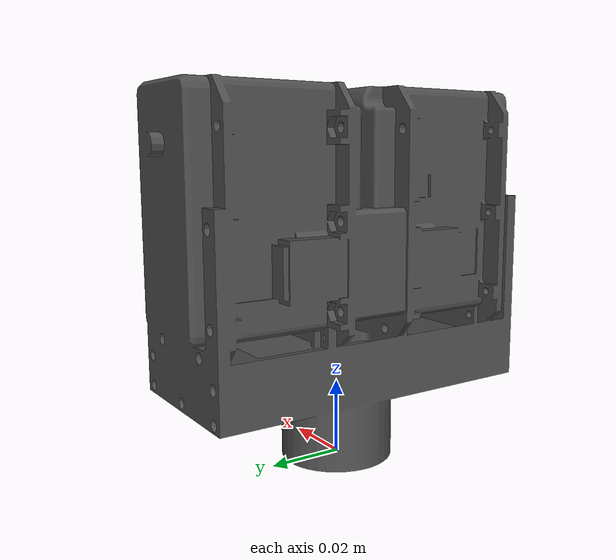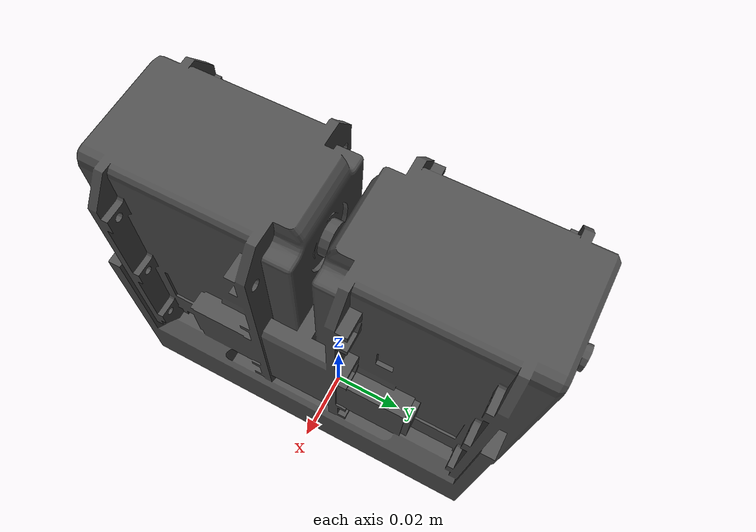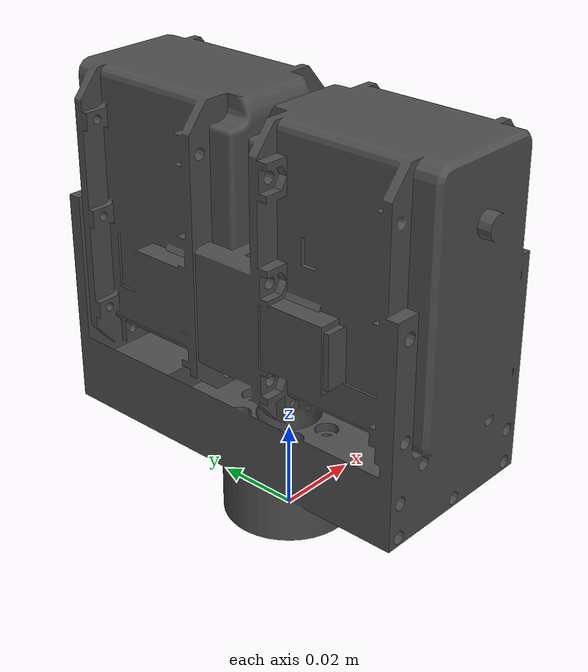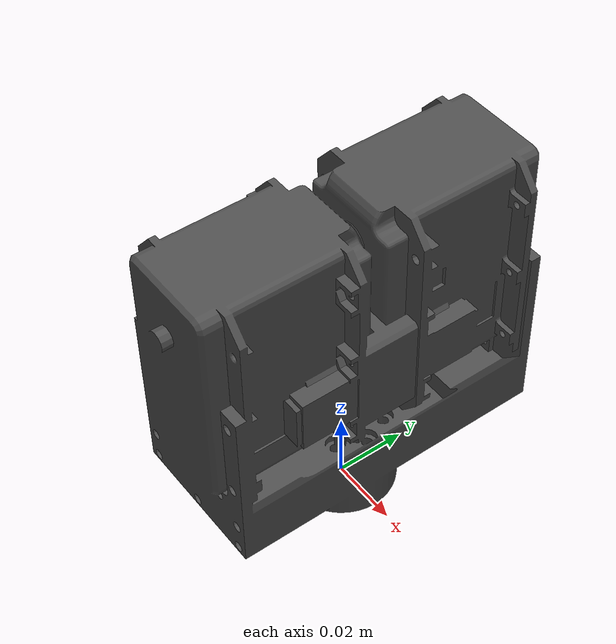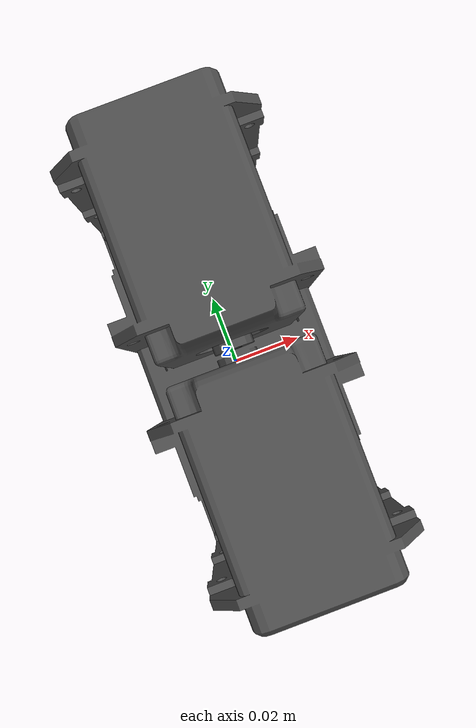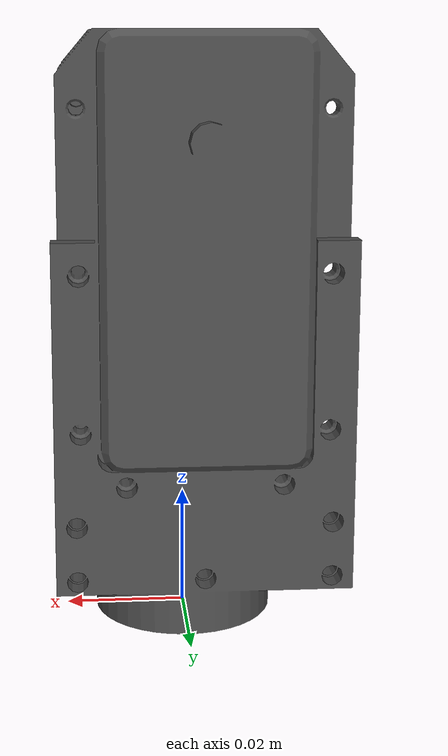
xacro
<robot name="base_rotation_link"><link name="base_rotation_link">
    <inertial>
      <origin rpy="0 0 0" xyz="-1.11022302462516E-16 -7.80223872637444E-17 0.0660708417371112" />
      <mass value="1.4054258533062" />
      <inertia ixx="0.00159425912810341" ixy="-8.40269196653518E-08" ixz="-1.60925604895535E-19" iyy="0.000605522001732049" iyz="-6.08768470792684E-19" izz="0.00123388334665811" />
    </inertial>
    <visual>
      <origin rpy="0 0 0" xyz="0 0 0" />
      <geometry>
        <mesh filename="package://robotican_description/komodo/meshes/base_rotation_link.STL" />
      </geometry>
      <material name="">
        <color rgba="0.3 0.3 0.3 1" />
      </material>
    </visual>
    <collision>
      <origin rpy="0 0 0" xyz="0 0 0" />
      <geometry>
        <mesh filename="package://robotican_description/komodo/meshes/base_rotation_link.STL" />
      </geometry>
    </collision>
  </link>
  </robot>
